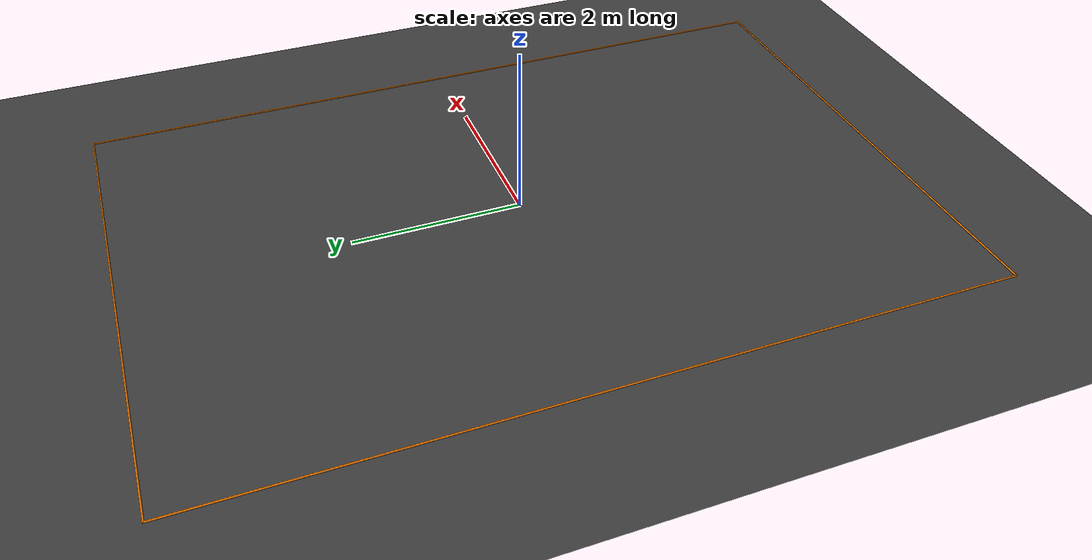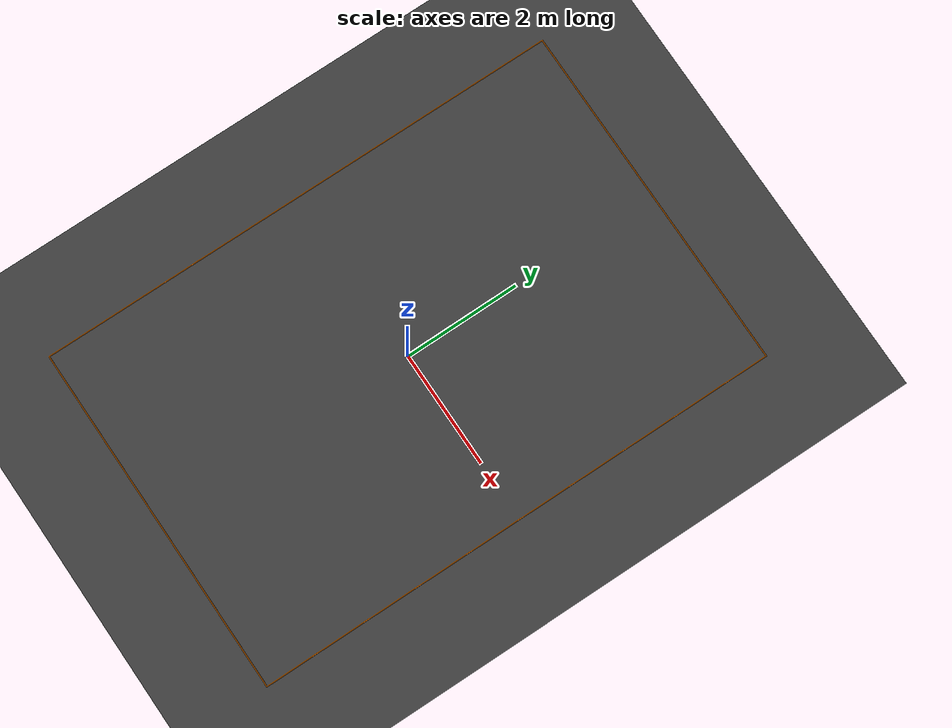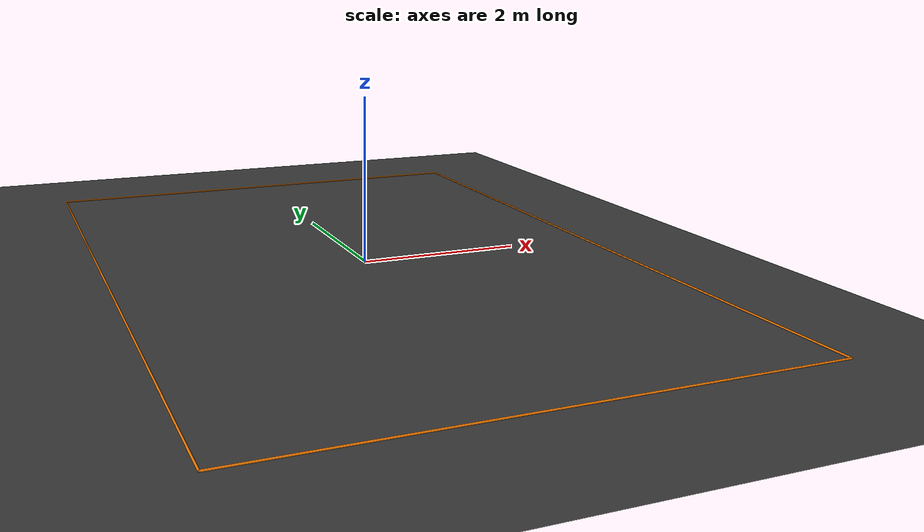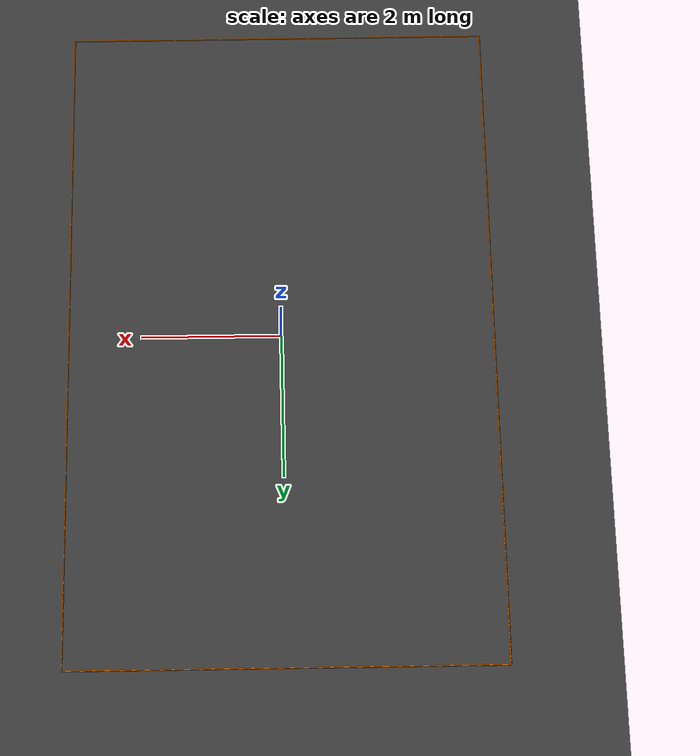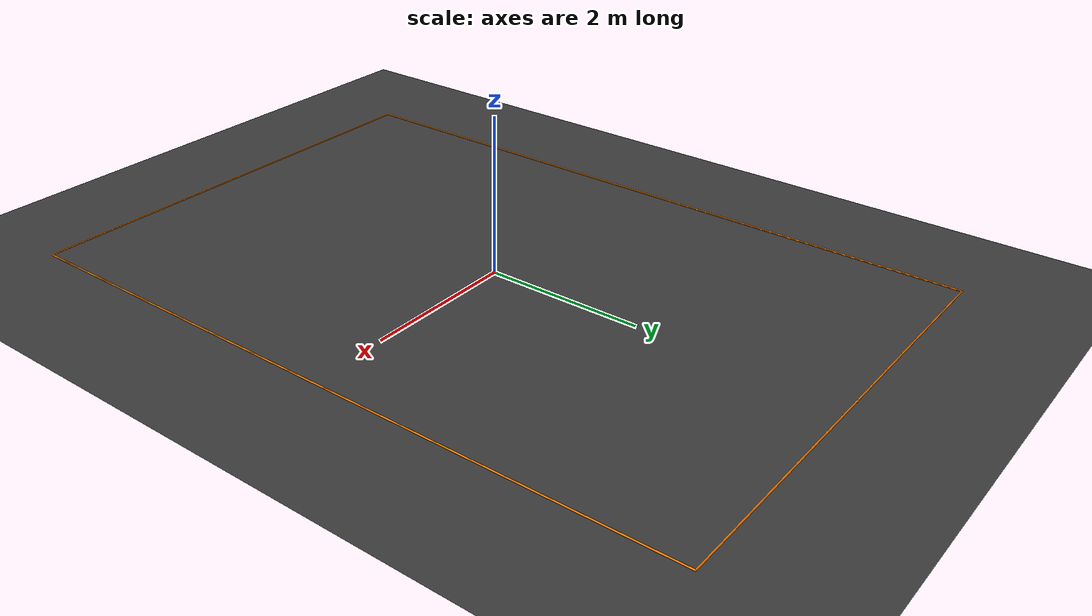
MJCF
<mujoco model="scene">

    <compiler angle="radian" meshdir="assets" autolimits="true"/>

    <visual>
        <headlight diffuse="0.6 0.6 0.6" ambient="0.3 0.3 0.3" specular="0 0 0" />
        <rgba haze="0.15 0.25 0.35 1" />
        <global offwidth="2560" offheight="1440" elevation="-5" azimuth="-120"/>
    </visual>

    <asset>
        <!-- Sky materials -->
        <texture type="skybox" builtin="gradient" rgb1="0.3 0.5 0.7" rgb2="0 0 0" width="512" height="3072" />

        <!-- Ground Materials  -->
        <texture type="2d" name="groundplane"
            builtin="checker" mark="edge" rgb1="0.3 0.3 0.3" rgb2="0.2 0.2 0.2"
            markrgb="0.8 0.8 0.8" width="300" height="300" />
        <material name="groundplane" texture="groundplane" texuniform="true" texrepeat="5 5"
            reflectance="0.001"/>
        <material name="line_mat" rgba="1 0.5 0 1"/>
    </asset>

    <worldbody>
        <!-- Light -->
        <light pos="0 0 3.5" dir="0 0 -1" directional="true" />

        <!-- Ground -->
        <geom name="ground" size="0 0 0.1" pos="0 0 0" type="plane"
            material="groundplane" contype="1" conaffinity="3" group="0"/>

        <body name="booth_outline" pos="0 0 0.005">
            <!-- Booth outline
                20ft x 30ft rectangle outline
                20ft = 6.096m, 30ft = 9.144m
                Half-widths: 3.048m and 4.572m -->
            <!-- Front edge (along x) -->
            <geom type="capsule" size="0.01" fromto="-3.048 -4.572 0   3.048 -4.572 0" material="line_mat"/>
            <!-- Back edge (along x) -->
            <geom type="capsule" size="0.01" fromto="-3.048  4.572 0   3.048  4.572 0" material="line_mat"/>
            <!-- Left edge (along y) -->
            <geom type="capsule" size="0.01" fromto="-3.048 -4.572 0  -3.048  4.572 0" material="line_mat"/>
            <!-- Right edge (along y) -->
            <geom type="capsule" size="0.01" fromto=" 3.048 -4.572 0   3.048  4.572 0" material="line_mat"/>
            <!-- axes -->
            <geom type="capsule" size="0.01" fromto="0 0 -0.01   1 0 -0.01" rgba="1 0 0 1"/>
            <geom type="capsule" size="0.01" fromto="0 0 -0.01   0 1 -0.01" rgba="0 1 0 1"/>
        </body>
    </worldbody>

    <worldbody>

        <!-- TUG -->
        <body name="mx340_vehicle" pos="-1.9 2 0.10" axisangle="0 0 1 0">
            <freejoint name="tugger_freejoint"/>
            <frame name="tugger_frame" pos="0 0 0" quat="1 0 0 0"/>
        </body>

        <!-- CART -->
        <body name="quad_steer_cart_vehicle" pos="-1.9 -0.215800 0.10" axisangle="0 0 1 1.5708">
            <freejoint name="cart_freejoint"/>
            <frame name="quad_steer_cart_frame" pos="0 0 0" quat="1 0 0 0"/>
        </body>
    </worldbody>

    <worldbody>
        <!-- FORKLIFT -->
        <body name="boa_longbow_vehicle" pos="0 -3.0 0.10" axisangle="0 0 1 1.5708">
            <freejoint name="forklift_freejoint"/>
            <frame name="forklift_frame" pos="0 0 0" quat="1 0 0 0"/>
        </body>
    </worldbody>

    <worldbody>
        <!-- GMA Pallet 1 -->
        <body name="gma_pallet_1_free" pos="1.75 -3.75 0.10" axisangle="0 0 1 1.5708">
            <freejoint name="gma_pallet_1_freejoint"/>
            <frame name="gma_pallet_1_frame" pos="0 0 0" quat="1 0 0 0"/>
        </body>
    </worldbody>

    <worldbody>

        <!-- Cage Pallet 1 -->
        <body name="cage_pallet_1_free" pos="0.00 -2.2 0.35" axisangle="0 0 1 1.5708">
            <freejoint name="cage_pallet_1_freejoint"/>
            <frame name="cage_pallet_1_frame" pos="0 0 0" quat="1 0 0 0"/>
        </body>

        <!-- Cage Pallet 2 -->
        <body name="cage_pallet_2_free" pos="-2.25 -3.65 1.5" axisangle="0 0 1 0">
            <freejoint name="cage_pallet_2_freejoint"/>
            <frame name="cage_pallet_2_frame" pos="0 0 0" quat="1 0 0 0"/>
        </body>
    </worldbody>

    <worldbody>
        <!-- LongBow on the ground -->
        <body name="longbow_on_ground_free" pos="2.75 -3.75 1.25" axisangle="0 0 1 -1.5708">
            <frame name="longbow_on_ground_frame" pos="0 0 0" quat="1 0 0 0"/>
        </body>
    </worldbody>

</mujoco>
